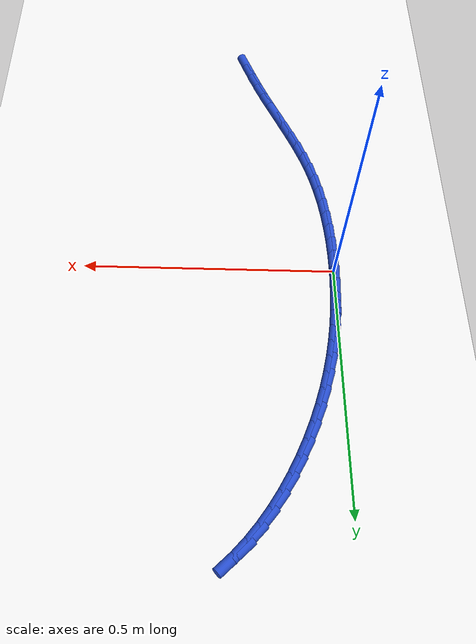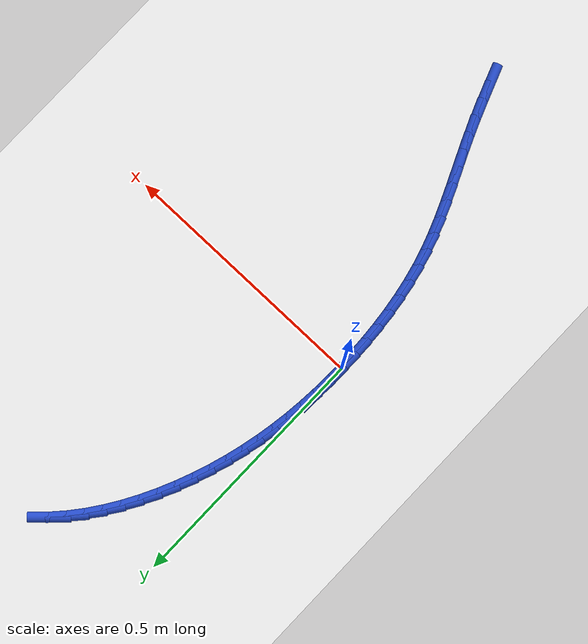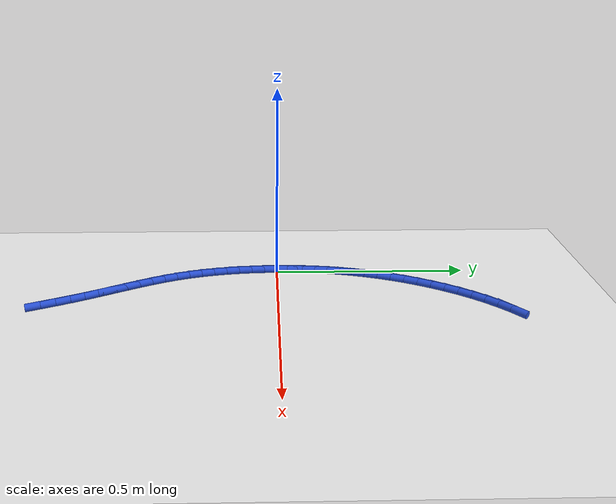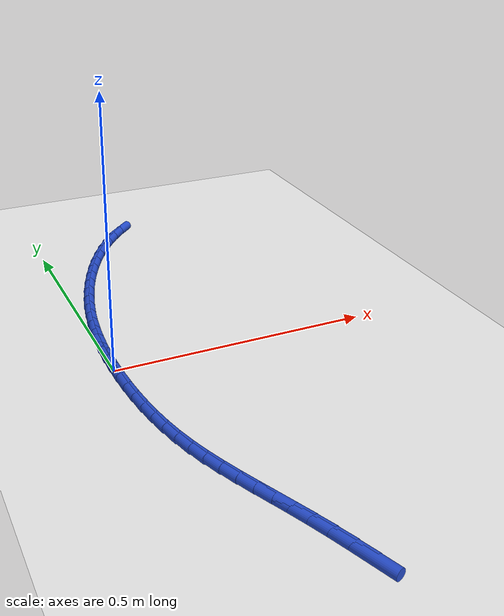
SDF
<sdf version="1.6">
 <world name="default">
  <model name="ground_plane">
   <static>1</static>
   <link name="link">
    <collision name="collision">
     <geometry><plane><normal>0 0 1</normal><size>100 100</size></plane></geometry>
     <surface><friction><ode><mu>100</mu><mu2>50</mu2></ode></friction></surface>
    </collision>
    <visual name="visual">
     <cast_shadows>0</cast_shadows>
     <geometry><plane><normal>0 0 1</normal><size>100 100</size></plane></geometry>
     <material>
      <script><uri>file://media/materials/scripts/gazebo.material</uri><name>Gazebo/WhiteGlow</name></script>
     </material>
    </visual>
   </link>
  </model>
  <model name="line">
   <link name="link_0">
    <pose>-9.107298248878237e-18 2.7755575615628914e-17 0.01 0 1.57 1.555257664055114</pose>
    <collision name="collision">
     <geometry><cylinder><radius>0.01</radius><length>0.08</length></cylinder></geometry>
    </collision>
    <visual name="visual">
     <material>
      <script><name>Gazebo/Blue</name><uri>file://media/materials/scripts/gazebo.material</uri></script>
     </material>
     <geometry><cylinder><radius>0.01</radius><length>0.08</length></cylinder></geometry>
    </visual>
   </link>
   <link name="link_1">
    <pose>0.0005190087731679751 0.033398433933696195 0.01 0 1.57 1.5252258439415316</pose>
    <collision name="collision">
     <geometry><cylinder><radius>0.01</radius><length>0.08</length></cylinder></geometry>
    </collision>
    <visual name="visual">
     <material>
      <script><name>Gazebo/Blue</name><uri>file://media/materials/scripts/gazebo.material</uri></script>
     </material>
     <geometry><cylinder><radius>0.01</radius><length>0.08</length></cylinder></geometry>
    </visual>
   </link>
   <link name="link_2">
    <pose>0.0020342389386213155 0.06662566893933405 0.01 0 1.57 1.4930400652777662</pose>
    <collision name="collision">
     <geometry><cylinder><radius>0.01</radius><length>0.08</length></cylinder></geometry>
    </collision>
    <visual name="visual">
     <material>
      <script><name>Gazebo/Blue</name><uri>file://media/materials/scripts/gazebo.material</uri></script>
     </material>
     <geometry><cylinder><radius>0.01</radius><length>0.08</length></cylinder></geometry>
    </visual>
   </link>
   <link name="link_3">
    <pose>0.004613334838291421 0.09972777524075394 0.01 0 1.57 1.4589015401506857</pose>
    <collision name="collision">
     <geometry><cylinder><radius>0.01</radius><length>0.08</length></cylinder></geometry>
    </collision>
    <visual name="visual">
     <material>
      <script><name>Gazebo/Blue</name><uri>file://media/materials/scripts/gazebo.material</uri></script>
     </material>
     <geometry><cylinder><radius>0.01</radius><length>0.08</length></cylinder></geometry>
    </visual>
   </link>
   <link name="link_4">
    <pose>0.008323940814109693 0.13275082306179603 0.01 0 1.57 1.4230552827653005</pose>
    <collision name="collision">
     <geometry><cylinder><radius>0.01</radius><length>0.08</length></cylinder></geometry>
    </collision>
    <visual name="visual">
     <material>
      <script><name>Gazebo/Blue</name><uri>file://media/materials/scripts/gazebo.material</uri></script>
     </material>
     <geometry><cylinder><radius>0.01</radius><length>0.08</length></cylinder></geometry>
    </visual>
   </link>
   <link name="link_5">
    <pose>0.013233701208007547 0.16574088262630074 0.01 0 1.57 1.3857858903296312</pose>
    <collision name="collision">
     <geometry><cylinder><radius>0.01</radius><length>0.08</length></cylinder></geometry>
    </collision>
    <visual name="visual">
     <material>
      <script><name>Gazebo/Blue</name><uri>file://media/materials/scripts/gazebo.material</uri></script>
     </material>
     <geometry><cylinder><radius>0.01</radius><length>0.08</length></cylinder></geometry>
    </visual>
   </link>
   <link name="link_6">
    <pose>0.01941026036191639 0.19874402415810835 0.01 0 1.57 1.3474104782677787</pose>
    <collision name="collision">
     <geometry><cylinder><radius>0.01</radius><length>0.08</length></cylinder></geometry>
    </collision>
    <visual name="visual">
     <material>
      <script><name>Gazebo/Blue</name><uri>file://media/materials/scripts/gazebo.material</uri></script>
     </material>
     <geometry><cylinder><radius>0.01</radius><length>0.08</length></cylinder></geometry>
    </visual>
   </link>
   <link name="link_7">
    <pose>0.02692126261776762 0.23180631788105902 0.01 0 1.57 1.3082696706591057</pose>
    <collision name="collision">
     <geometry><cylinder><radius>0.01</radius><length>0.08</length></cylinder></geometry>
    </collision>
    <visual name="visual">
     <material>
      <script><name>Gazebo/Blue</name><uri>file://media/materials/scripts/gazebo.material</uri></script>
     </material>
     <geometry><cylinder><radius>0.01</radius><length>0.08</length></cylinder></geometry>
    </visual>
   </link>
   <link name="link_8">
    <pose>0.03583425442308479 0.2649735514079297 0.01 0 1.57 1.2687832618331925</pose>
    <collision name="collision">
     <geometry><cylinder><radius>0.01</radius><length>0.08</length></cylinder></geometry>
    </collision>
    <visual name="visual">
     <material>
      <script><name>Gazebo/Blue</name><uri>file://media/materials/scripts/gazebo.material</uri></script>
     </material>
     <geometry><cylinder><radius>0.01</radius><length>0.08</length></cylinder></geometry>
    </visual>
   </link>
   <link name="link_9">
    <pose>0.04619153897217575 0.2982186376818289 0.01 0 1.57 1.2289957124910962</pose>
    <collision name="collision">
     <geometry><cylinder><radius>0.01</radius><length>0.08</length></cylinder></geometry>
    </collision>
    <visual name="visual">
     <material>
      <script><name>Gazebo/Blue</name><uri>file://media/materials/scripts/gazebo.material</uri></script>
     </material>
     <geometry><cylinder><radius>0.01</radius><length>0.08</length></cylinder></geometry>
    </visual>
   </link>
   <link name="link_10">
    <pose>0.057976715418992734 0.3313450171332466 0.01 0 1.57 1.1883586295876978</pose>
    <collision name="collision">
     <geometry><cylinder><radius>0.01</radius><length>0.08</length></cylinder></geometry>
    </collision>
    <visual name="visual">
     <material>
      <script><name>Gazebo/Blue</name><uri>file://media/materials/scripts/gazebo.material</uri></script>
     </material>
     <geometry><cylinder><radius>0.01</radius><length>0.08</length></cylinder></geometry>
    </visual>
   </link>
   <link name="link_11">
    <pose>0.07116505692381593 0.36413209390728146 0.01 0 1.57 1.1462779926022508</pose>
    <collision name="collision">
     <geometry><cylinder><radius>0.01</radius><length>0.08</length></cylinder></geometry>
    </collision>
    <visual name="visual">
     <material>
      <script><name>Gazebo/Blue</name><uri>file://media/materials/scripts/gazebo.material</uri></script>
     </material>
     <geometry><cylinder><radius>0.01</radius><length>0.08</length></cylinder></geometry>
    </visual>
   </link>
   <link name="link_12">
    <pose>0.08573183664692544 0.3963592721490312 0.01 0 1.57 1.102145853257991</pose>
    <collision name="collision">
     <geometry><cylinder><radius>0.01</radius><length>0.08</length></cylinder></geometry>
    </collision>
    <visual name="visual">
     <material>
      <script><name>Gazebo/Blue</name><uri>file://media/materials/scripts/gazebo.material</uri></script>
     </material>
     <geometry><cylinder><radius>0.01</radius><length>0.08</length></cylinder></geometry>
    </visual>
   </link>
   <link name="link_13">
    <pose>0.10165232774860133 0.4278059560035942 0.01 0 1.57 1.055322589953143</pose>
    <collision name="collision">
     <geometry><cylinder><radius>0.01</radius><length>0.08</length></cylinder></geometry>
    </collision>
    <visual name="visual">
     <material>
      <script><name>Gazebo/Blue</name><uri>file://media/materials/scripts/gazebo.material</uri></script>
     </material>
     <geometry><cylinder><radius>0.01</radius><length>0.08</length></cylinder></geometry>
    </visual>
   </link>
   <link name="link_14">
    <pose>0.11890180338912378 0.4582515496160687 0.01 0 1.57 1.0051223816342667</pose>
    <collision name="collision">
     <geometry><cylinder><radius>0.01</radius><length>0.08</length></cylinder></geometry>
    </collision>
    <visual name="visual">
     <material>
      <script><name>Gazebo/Blue</name><uri>file://media/materials/scripts/gazebo.material</uri></script>
     </material>
     <geometry><cylinder><radius>0.01</radius><length>0.08</length></cylinder></geometry>
    </visual>
   </link>
   <link name="link_15">
    <pose>0.13745553672877292 0.4874754571315527 0.01 0 1.57 0.9508032057915508</pose>
    <collision name="collision">
     <geometry><cylinder><radius>0.01</radius><length>0.08</length></cylinder></geometry>
    </collision>
    <visual name="visual">
     <material>
      <script><name>Gazebo/Blue</name><uri>file://media/materials/scripts/gazebo.material</uri></script>
     </material>
     <geometry><cylinder><radius>0.01</radius><length>0.08</length></cylinder></geometry>
    </visual>
   </link>
   <link name="link_16">
    <pose>0.15728880092782888 0.5152570826951446 0.01 0 1.57 0.8915642866965477</pose>
    <collision name="collision">
     <geometry><cylinder><radius>0.01</radius><length>0.08</length></cylinder></geometry>
    </collision>
    <visual name="visual">
     <material>
      <script><name>Gazebo/Blue</name><uri>file://media/materials/scripts/gazebo.material</uri></script>
     </material>
     <geometry><cylinder><radius>0.01</radius><length>0.08</length></cylinder></geometry>
    </visual>
   </link>
   <link name="link_17">
    <pose>0.17837686914657175 0.5413758304519423 0.01 0 1.57 0.8265561721535755</pose>
    <collision name="collision">
     <geometry><cylinder><radius>0.01</radius><length>0.08</length></cylinder></geometry>
    </collision>
    <visual name="visual">
     <material>
      <script><name>Gazebo/Blue</name><uri>file://media/materials/scripts/gazebo.material</uri></script>
     </material>
     <geometry><cylinder><radius>0.01</radius><length>0.08</length></cylinder></geometry>
    </visual>
   </link>
   <link name="link_18">
    <pose>0.2006950145452817 0.5656111045470443 0.01 0 1.57 0.754911493349275</pose>
    <collision name="collision">
     <geometry><cylinder><radius>0.01</radius><length>0.08</length></cylinder></geometry>
    </collision>
    <visual name="visual">
     <material>
      <script><name>Gazebo/Blue</name><uri>file://media/materials/scripts/gazebo.material</uri></script>
     </material>
     <geometry><cylinder><radius>0.01</radius><length>0.08</length></cylinder></geometry>
    </visual>
   </link>
   <link name="link_222">
    <pose>0.16441380043853623 -0.5789340756252422 0.01 0 1.57 -1.2126630743314364</pose>
    <collision name="collision">
     <geometry><cylinder><radius>0.01</radius><length>0.08</length></cylinder></geometry>
    </collision>
    <visual name="visual">
     <material>
      <script><name>Gazebo/Blue</name><uri>file://media/materials/scripts/gazebo.material</uri></script>
     </material>
     <geometry><cylinder><radius>0.01</radius><length>0.08</length></cylinder></geometry>
    </visual>
   </link>
   <link name="link_223">
    <pose>0.15178761357639112 -0.5451988533439 0.01 0 1.57 -1.1990757136265597</pose>
    <collision name="collision">
     <geometry><cylinder><radius>0.01</radius><length>0.08</length></cylinder></geometry>
    </collision>
    <visual name="visual">
     <material>
      <script><name>Gazebo/Blue</name><uri>file://media/materials/scripts/gazebo.material</uri></script>
     </material>
     <geometry><cylinder><radius>0.01</radius><length>0.08</length></cylinder></geometry>
    </visual>
   </link>
   <link name="link_224">
    <pose>0.13887256995814756 -0.5120701006282966 0.01 0 1.57 -1.177927369486675</pose>
    <collision name="collision">
     <geometry><cylinder><radius>0.01</radius><length>0.08</length></cylinder></geometry>
    </collision>
    <visual name="visual">
     <material>
      <script><name>Gazebo/Blue</name><uri>file://media/materials/scripts/gazebo.material</uri></script>
     </material>
     <geometry><cylinder><radius>0.01</radius><length>0.08</length></cylinder></geometry>
    </visual>
   </link>
   <link name="link_225">
    <pose>0.1254922556254597 -0.47978267887497983 0.01 0 1.57 -1.1584698053056954</pose>
    <collision name="collision">
     <geometry><cylinder><radius>0.01</radius><length>0.08</length></cylinder></geometry>
    </collision>
    <visual name="visual">
     <material>
      <script><name>Gazebo/Blue</name><uri>file://media/materials/scripts/gazebo.material</uri></script>
     </material>
     <geometry><cylinder><radius>0.01</radius><length>0.08</length></cylinder></geometry>
    </visual>
   </link>
   <link name="link_226">
    <pose>0.11172651777696666 -0.4483109431728495 0.01 0 1.57 -1.1479814778257418</pose>
    <collision name="collision">
     <geometry><cylinder><radius>0.01</radius><length>0.08</length></cylinder></geometry>
    </collision>
    <visual name="visual">
     <material>
      <script><name>Gazebo/Blue</name><uri>file://media/materials/scripts/gazebo.material</uri></script>
     </material>
     <geometry><cylinder><radius>0.01</radius><length>0.08</length></cylinder></geometry>
    </visual>
   </link>
   <link name="link_227">
    <pose>0.0978377149924468 -0.4174437137971649 0.01 0 1.57 -1.1471092698901402</pose>
    <collision name="collision">
     <geometry><cylinder><radius>0.01</radius><length>0.08</length></cylinder></geometry>
    </collision>
    <visual name="visual">
     <material>
      <script><name>Gazebo/Blue</name><uri>file://media/materials/scripts/gazebo.material</uri></script>
     </material>
     <geometry><cylinder><radius>0.01</radius><length>0.08</length></cylinder></geometry>
    </visual>
   </link>
   <link name="link_228">
    <pose>0.08409212191073033 -0.3869658300917949 0.01 0 1.57 -1.1562208537273078</pose>
    <collision name="collision">
     <geometry><cylinder><radius>0.01</radius><length>0.08</length></cylinder></geometry>
    </collision>
    <visual name="visual">
     <material>
      <script><name>Gazebo/Blue</name><uri>file://media/materials/scripts/gazebo.material</uri></script>
     </material>
     <geometry><cylinder><radius>0.01</radius><length>0.08</length></cylinder></geometry>
    </visual>
   </link>
   <link name="link_229">
    <pose>0.07075601317064724 -0.3566621314006081 0.01 0 1.57 -1.1755353716809147</pose>
    <collision name="collision">
     <geometry><cylinder><radius>0.01</radius><length>0.08</length></cylinder></geometry>
    </collision>
    <visual name="visual">
     <material>
      <script><name>Gazebo/Blue</name><uri>file://media/materials/scripts/gazebo.material</uri></script>
     </material>
     <geometry><cylinder><radius>0.01</radius><length>0.08</length></cylinder></geometry>
    </visual>
   </link>
   <link name="link_230">
    <pose>0.058095663411027385 -0.3263174570674726 0.01 0 1.57 -1.2050816072788353</pose>
    <collision name="collision">
     <geometry><cylinder><radius>0.01</radius><length>0.08</length></cylinder></geometry>
    </collision>
    <visual name="visual">
     <material>
      <script><name>Gazebo/Blue</name><uri>file://media/materials/scripts/gazebo.material</uri></script>
     </material>
     <geometry><cylinder><radius>0.01</radius><length>0.08</length></cylinder></geometry>
    </visual>
   </link>
   <link name="link_231">
    <pose>0.046377347270701495 -0.2957166464362585 0.01 0 1.57 -1.2446311451421463</pose>
    <collision name="collision">
     <geometry><cylinder><radius>0.01</radius><length>0.08</length></cylinder></geometry>
    </collision>
    <visual name="visual">
     <material>
      <script><name>Gazebo/Blue</name><uri>file://media/materials/scripts/gazebo.material</uri></script>
     </material>
     <geometry><cylinder><radius>0.01</radius><length>0.08</length></cylinder></geometry>
    </visual>
   </link>
   <link name="link_232">
    <pose>0.03586733938849935 -0.2646445388508339 0.01 0 1.57 -1.292465560419785</pose>
    <collision name="collision">
     <geometry><cylinder><radius>0.01</radius><length>0.08</length></cylinder></geometry>
    </collision>
    <visual name="visual">
     <material>
      <script><name>Gazebo/Blue</name><uri>file://media/materials/scripts/gazebo.material</uri></script>
     </material>
     <geometry><cylinder><radius>0.01</radius><length>0.08</length></cylinder></geometry>
    </visual>
   </link>
   <link name="link_233">
    <pose>0.026801046700564414 -0.23291625091415713 0.01 0 1.57 -1.339949851116053</pose>
    <collision name="collision">
     <geometry><cylinder><radius>0.01</radius><length>0.08</length></cylinder></geometry>
    </collision>
    <visual name="visual">
     <material>
      <script><name>Gazebo/Blue</name><uri>file://media/materials/scripts/gazebo.material</uri></script>
     </material>
     <geometry><cylinder><radius>0.01</radius><length>0.08</length></cylinder></geometry>
    </visual>
   </link>
   <link name="link_234">
    <pose>0.019196237391973098 -0.20056037494265164 0.01 0 1.57 -1.3837640082579115</pose>
    <collision name="collision">
     <geometry><cylinder><radius>0.01</radius><length>0.08</length></cylinder></geometry>
    </collision>
    <visual name="visual">
     <material>
      <script><name>Gazebo/Blue</name><uri>file://media/materials/scripts/gazebo.material</uri></script>
     </material>
     <geometry><cylinder><radius>0.01</radius><length>0.08</length></cylinder></geometry>
    </visual>
   </link>
   <link name="link_235">
    <pose>0.012977093072338493 -0.16769729968545205 0.01 0 1.57 -1.4241946369756433</pose>
    <collision name="collision">
     <geometry><cylinder><radius>0.01</radius><length>0.08</length></cylinder></geometry>
    </collision>
    <visual name="visual">
     <material>
      <script><name>Gazebo/Blue</name><uri>file://media/materials/scripts/gazebo.material</uri></script>
     </material>
     <geometry><cylinder><radius>0.01</radius><length>0.08</length></cylinder></geometry>
    </visual>
   </link>
   <link name="link_236">
    <pose>0.008067432418560137 -0.1344477698821572 0.01 0 1.57 -1.4615409909272563</pose>
    <collision name="collision">
     <geometry><cylinder><radius>0.01</radius><length>0.08</length></cylinder></geometry>
    </collision>
    <visual name="visual">
     <material>
      <script><name>Gazebo/Blue</name><uri>file://media/materials/scripts/gazebo.material</uri></script>
     </material>
     <geometry><cylinder><radius>0.01</radius><length>0.08</length></cylinder></geometry>
    </visual>
   </link>
   <link name="link_237">
    <pose>0.004391074107537571 -0.10093253027236597 0.01 0 1.57 -1.4960924079548878</pose>
    <collision name="collision">
     <geometry><cylinder><radius>0.01</radius><length>0.08</length></cylinder></geometry>
    </collision>
    <visual name="visual">
     <material>
      <script><name>Gazebo/Blue</name><uri>file://media/materials/scripts/gazebo.material</uri></script>
     </material>
     <geometry><cylinder><radius>0.01</radius><length>0.08</length></cylinder></geometry>
    </visual>
   </link>
   <link name="link_238">
    <pose>0.0018718368161702817 -0.0672723255956761 0.01 0 1.57 -1.5281230604908425</pose>
    <collision name="collision">
     <geometry><cylinder><radius>0.01</radius><length>0.08</length></cylinder></geometry>
    </collision>
    <visual name="visual">
     <material>
      <script><name>Gazebo/Blue</name><uri>file://media/materials/scripts/gazebo.material</uri></script>
     </material>
     <geometry><cylinder><radius>0.01</radius><length>0.08</length></cylinder></geometry>
    </visual>
   </link>
   <link name="link_239">
    <pose>0.0004335392213579369 -0.033587900591688216 0.01 0 1.57 -1.5578894424895793</pose>
    <collision name="collision">
     <geometry><cylinder><radius>0.01</radius><length>0.08</length></cylinder></geometry>
    </collision>
    <visual name="visual">
     <material>
      <script><name>Gazebo/Blue</name><uri>file://media/materials/scripts/gazebo.material</uri></script>
     </material>
     <geometry><cylinder><radius>0.01</radius><length>0.08</length></cylinder></geometry>
    </visual>
   </link>
   <link name="link_240">
    <pose>-5.204170427930421e-18 -9.71445146547012e-17 0.01 0 1.57 1.5559628789640336</pose>
    <collision name="collision">
     <geometry><cylinder><radius>0.01</radius><length>0.08</length></cylinder></geometry>
    </collision>
    <visual name="visual">
     <material>
      <script><name>Gazebo/Blue</name><uri>file://media/materials/scripts/gazebo.material</uri></script>
     </material>
     <geometry><cylinder><radius>0.01</radius><length>0.08</length></cylinder></geometry>
    </visual>
   </link>
   <link name="link_241">
    <pose>0.0004950378289959945 0.033370631439789425 0.01 0 1.57 1.5300279267334953</pose>
    <collision name="collision">
     <geometry><cylinder><radius>0.01</radius><length>0.08</length></cylinder></geometry>
    </collision>
    <visual name="visual">
     <material>
      <script><name>Gazebo/Blue</name><uri>file://media/materials/scripts/gazebo.material</uri></script>
     </material>
     <geometry><cylinder><radius>0.01</radius><length>0.08</length></cylinder></geometry>
    </visual>
   </link>
   <link name="link_242">
    <pose>0.0018424713852454744 0.06640324898808159 0.01 0 1.57 1.5430567386794487</pose>
    <collision name="collision">
     <geometry><cylinder><radius>0.01</radius><length>0.08</length></cylinder></geometry>
    </collision>
    <visual name="visual">
     <material>
      <script><name>Gazebo/Blue</name><uri>file://media/materials/scripts/gazebo.material</uri></script>
     </material>
     <geometry><cylinder><radius>0.01</radius><length>0.08</length></cylinder></geometry>
    </visual>
   </link>
  </model>
 </world>
</sdf>
